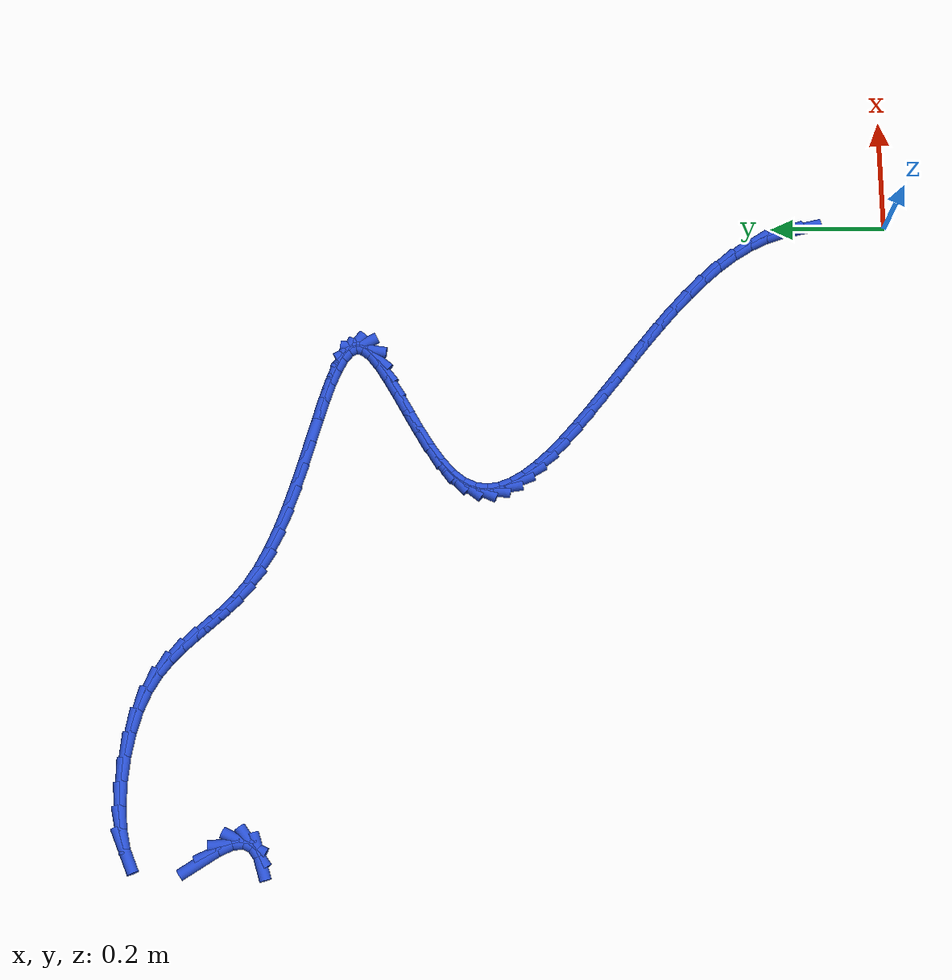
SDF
<sdf version="1.6">
 <world name="default">
  <model name="ground_plane">
   <static>1</static>
   <link name="link">
    <collision name="collision">
     <geometry><plane><normal>0 0 1</normal><size>100 100</size></plane></geometry>
     <surface><friction><ode><mu>100</mu><mu2>50</mu2></ode></friction></surface>
    </collision>
    <visual name="visual">
     <cast_shadows>0</cast_shadows>
     <geometry><plane><normal>0 0 1</normal><size>100 100</size></plane></geometry>
     <material>
      <script><uri>file://media/materials/scripts/gazebo.material</uri><name>Gazebo/WhiteGlow</name></script>
     </material>
    </visual>
   </link>
  </model>
  <model name="line">
   <link name="link_5">
    <pose>-0.003128329510036545 0.15195940457457374 0.01 0 1.57 -1.3480455954679698</pose>
    <collision name="collision">
     <geometry><cylinder><radius>0.01</radius><length>0.08</length></cylinder></geometry>
    </collision>
    <visual name="visual">
     <material>
      <script><name>Gazebo/Blue</name><uri>file://media/materials/scripts/gazebo.material</uri></script>
     </material>
     <geometry><cylinder><radius>0.01</radius><length>0.08</length></cylinder></geometry>
    </visual>
   </link>
   <link name="link_6">
    <pose>-0.009852102370371266 0.18164369224610138 0.01 0 1.57 -1.2386932895417684</pose>
    <collision name="collision">
     <geometry><cylinder><radius>0.01</radius><length>0.08</length></cylinder></geometry>
    </collision>
    <visual name="visual">
     <material>
      <script><name>Gazebo/Blue</name><uri>file://media/materials/scripts/gazebo.material</uri></script>
     </material>
     <geometry><cylinder><radius>0.01</radius><length>0.08</length></cylinder></geometry>
    </visual>
   </link>
   <link name="link_7">
    <pose>-0.01994645989118416 0.21091319098384492 0.01 0 1.57 -1.1180624288054297</pose>
    <collision name="collision">
     <geometry><cylinder><radius>0.01</radius><length>0.08</length></cylinder></geometry>
    </collision>
    <visual name="visual">
     <material>
      <script><name>Gazebo/Blue</name><uri>file://media/materials/scripts/gazebo.material</uri></script>
     </material>
     <geometry><cylinder><radius>0.01</radius><length>0.08</length></cylinder></geometry>
    </visual>
   </link>
   <link name="link_8">
    <pose>-0.0339465029595011 0.23969431836833222 0.01 0 1.57 -1.0071411976336728</pose>
    <collision name="collision">
     <geometry><cylinder><radius>0.01</radius><length>0.08</length></cylinder></geometry>
    </collision>
    <visual name="visual">
     <material>
      <script><name>Gazebo/Blue</name><uri>file://media/materials/scripts/gazebo.material</uri></script>
     </material>
     <geometry><cylinder><radius>0.01</radius><length>0.08</length></cylinder></geometry>
    </visual>
   </link>
   <link name="link_9">
    <pose>-0.05181196645920728 0.26796008248753433 0.01 0 1.57 -0.9175272400275986</pose>
    <collision name="collision">
     <geometry><cylinder><radius>0.01</radius><length>0.08</length></cylinder></geometry>
    </collision>
    <visual name="visual">
     <material>
      <script><name>Gazebo/Blue</name><uri>file://media/materials/scripts/gazebo.material</uri></script>
     </material>
     <geometry><cylinder><radius>0.01</radius><length>0.08</length></cylinder></geometry>
    </visual>
   </link>
   <link name="link_10">
    <pose>-0.07305832109058072 0.2957194659111271 0.01 0 1.57 -0.8462580177132405</pose>
    <collision name="collision">
     <geometry><cylinder><radius>0.01</radius><length>0.08</length></cylinder></geometry>
    </collision>
    <visual name="visual">
     <material>
      <script><name>Gazebo/Blue</name><uri>file://media/materials/scripts/gazebo.material</uri></script>
     </material>
     <geometry><cylinder><radius>0.01</radius><length>0.08</length></cylinder></geometry>
    </visual>
   </link>
   <link name="link_11">
    <pose>-0.09718953150126901 0.32298238291630377 0.01 0 1.57 -0.7902077203371549</pose>
    <collision name="collision">
     <geometry><cylinder><radius>0.01</radius><length>0.08</length></cylinder></geometry>
    </collision>
    <visual name="visual">
     <material>
      <script><name>Gazebo/Blue</name><uri>file://media/materials/scripts/gazebo.material</uri></script>
     </material>
     <geometry><cylinder><radius>0.01</radius><length>0.08</length></cylinder></geometry>
    </visual>
   </link>
   <link name="link_12">
    <pose>-0.1237095623389198 0.349758747780258 0.01 0 1.57 -0.7467956951377155</pose>
    <collision name="collision">
     <geometry><cylinder><radius>0.01</radius><length>0.08</length></cylinder></geometry>
    </collision>
    <visual name="visual">
     <material>
      <script><name>Gazebo/Blue</name><uri>file://media/materials/scripts/gazebo.material</uri></script>
     </material>
     <geometry><cylinder><radius>0.01</radius><length>0.08</length></cylinder></geometry>
    </visual>
   </link>
   <link name="link_13">
    <pose>-0.15212237825118077 0.3760584747801834 0.01 0 1.57 -0.7140532744991808</pose>
    <collision name="collision">
     <geometry><cylinder><radius>0.01</radius><length>0.08</length></cylinder></geometry>
    </collision>
    <visual name="visual">
     <material>
      <script><name>Gazebo/Blue</name><uri>file://media/materials/scripts/gazebo.material</uri></script>
     </material>
     <geometry><cylinder><radius>0.01</radius><length>0.08</length></cylinder></geometry>
    </visual>
   </link>
   <link name="link_14">
    <pose>-0.18193194388569936 0.4018914781932733 0.01 0 1.57 -0.6905786795140608</pose>
    <collision name="collision">
     <geometry><cylinder><radius>0.01</radius><length>0.08</length></cylinder></geometry>
    </collision>
    <visual name="visual">
     <material>
      <script><name>Gazebo/Blue</name><uri>file://media/materials/scripts/gazebo.material</uri></script>
     </material>
     <geometry><cylinder><radius>0.01</radius><length>0.08</length></cylinder></geometry>
    </visual>
   </link>
   <link name="link_15">
    <pose>-0.21264222389012347 0.42726767229672147 0.01 0 1.57 -0.6754721019940143</pose>
    <collision name="collision">
     <geometry><cylinder><radius>0.01</radius><length>0.08</length></cylinder></geometry>
    </collision>
    <visual name="visual">
     <material>
      <script><name>Gazebo/Blue</name><uri>file://media/materials/scripts/gazebo.material</uri></script>
     </material>
     <geometry><cylinder><radius>0.01</radius><length>0.08</length></cylinder></geometry>
    </visual>
   </link>
   <link name="link_16">
    <pose>-0.2437571829121006 0.4521969713677213 0.01 0 1.57 -0.6682894268690722</pose>
    <collision name="collision">
     <geometry><cylinder><radius>0.01</radius><length>0.08</length></cylinder></geometry>
    </collision>
    <visual name="visual">
     <material>
      <script><name>Gazebo/Blue</name><uri>file://media/materials/scripts/gazebo.material</uri></script>
     </material>
     <geometry><cylinder><radius>0.01</radius><length>0.08</length></cylinder></geometry>
    </visual>
   </link>
   <link name="link_17">
    <pose>-0.2747807855992784 0.4766892896834665 0.01 0 1.57 -0.6690310822193424</pose>
    <collision name="collision">
     <geometry><cylinder><radius>0.01</radius><length>0.08</length></cylinder></geometry>
    </collision>
    <visual name="visual">
     <material>
      <script><name>Gazebo/Blue</name><uri>file://media/materials/scripts/gazebo.material</uri></script>
     </material>
     <geometry><cylinder><radius>0.01</radius><length>0.08</length></cylinder></geometry>
    </visual>
   </link>
   <link name="link_18">
    <pose>-0.3052169965993044 0.5007545415211503 0.01 0 1.57 -0.6781771857134884</pose>
    <collision name="collision">
     <geometry><cylinder><radius>0.01</radius><length>0.08</length></cylinder></geometry>
    </collision>
    <visual name="visual">
     <material>
      <script><name>Gazebo/Blue</name><uri>file://media/materials/scripts/gazebo.material</uri></script>
     </material>
     <geometry><cylinder><radius>0.01</radius><length>0.08</length></cylinder></geometry>
    </visual>
   </link>
   <link name="link_19">
    <pose>-0.33456978055982645 0.5244026411579666 0.01 0 1.57 -0.6967837894188746</pose>
    <collision name="collision">
     <geometry><cylinder><radius>0.01</radius><length>0.08</length></cylinder></geometry>
    </collision>
    <visual name="visual">
     <material>
      <script><name>Gazebo/Blue</name><uri>file://media/materials/scripts/gazebo.material</uri></script>
     </material>
     <geometry><cylinder><radius>0.01</radius><length>0.08</length></cylinder></geometry>
    </visual>
   </link>
   <link name="link_20">
    <pose>-0.36234310212849197 0.5476435028711086 0.01 0 1.57 -0.726664686968046</pose>
    <collision name="collision">
     <geometry><cylinder><radius>0.01</radius><length>0.08</length></cylinder></geometry>
    </collision>
    <visual name="visual">
     <material>
      <script><name>Gazebo/Blue</name><uri>file://media/materials/scripts/gazebo.material</uri></script>
     </material>
     <geometry><cylinder><radius>0.01</radius><length>0.08</length></cylinder></geometry>
    </visual>
   </link>
   <link name="link_21">
    <pose>-0.38804092595294865 0.5704870409377701 0.01 0 1.57 -0.7706970185485295</pose>
    <collision name="collision">
     <geometry><cylinder><radius>0.01</radius><length>0.08</length></cylinder></geometry>
    </collision>
    <visual name="visual">
     <material>
      <script><name>Gazebo/Blue</name><uri>file://media/materials/scripts/gazebo.material</uri></script>
     </material>
     <geometry><cylinder><radius>0.01</radius><length>0.08</length></cylinder></geometry>
    </visual>
   </link>
   <link name="link_22">
    <pose>-0.41116721668084416 0.5929431696351447 0.01 0 1.57 -0.8332978531784716</pose>
    <collision name="collision">
     <geometry><cylinder><radius>0.01</radius><length>0.08</length></cylinder></geometry>
    </collision>
    <visual name="visual">
     <material>
      <script><name>Gazebo/Blue</name><uri>file://media/materials/scripts/gazebo.material</uri></script>
     </material>
     <geometry><cylinder><radius>0.01</radius><length>0.08</length></cylinder></geometry>
    </visual>
   </link>
   <link name="link_23">
    <pose>-0.43122593895982597 0.6150218032404253 0.01 0 1.57 -0.9210800979003577</pose>
    <collision name="collision">
     <geometry><cylinder><radius>0.01</radius><length>0.08</length></cylinder></geometry>
    </collision>
    <visual name="visual">
     <material>
      <script><name>Gazebo/Blue</name><uri>file://media/materials/scripts/gazebo.material</uri></script>
     </material>
     <geometry><cylinder><radius>0.01</radius><length>0.08</length></cylinder></geometry>
    </visual>
   </link>
   <link name="link_24">
    <pose>-0.4477210574375421 0.6367328560308064 0.01 0 1.57 -1.0434441614694652</pose>
    <collision name="collision">
     <geometry><cylinder><radius>0.01</radius><length>0.08</length></cylinder></geometry>
    </collision>
    <visual name="visual">
     <material>
      <script><name>Gazebo/Blue</name><uri>file://media/materials/scripts/gazebo.material</uri></script>
     </material>
     <geometry><cylinder><radius>0.01</radius><length>0.08</length></cylinder></geometry>
    </visual>
   </link>
   <link name="link_25">
    <pose>-0.46015653676163987 0.6580862422834808 0.01 0 1.57 -1.2119133022652704</pose>
    <collision name="collision">
     <geometry><cylinder><radius>0.01</radius><length>0.08</length></cylinder></geometry>
    </collision>
    <visual name="visual">
     <material>
      <script><name>Gazebo/Blue</name><uri>file://media/materials/scripts/gazebo.material</uri></script>
     </material>
     <geometry><cylinder><radius>0.01</radius><length>0.08</length></cylinder></geometry>
    </visual>
   </link>
   <link name="link_26">
    <pose>-0.4680363415797669 0.6790918762756425 0.01 0 1.57 -1.4348050715899647</pose>
    <collision name="collision">
     <geometry><cylinder><radius>0.01</radius><length>0.08</length></cylinder></geometry>
    </collision>
    <visual name="visual">
     <material>
      <script><name>Gazebo/Blue</name><uri>file://media/materials/scripts/gazebo.material</uri></script>
     </material>
     <geometry><cylinder><radius>0.01</radius><length>0.08</length></cylinder></geometry>
    </visual>
   </link>
   <link name="link_27">
    <pose>-0.47086443653957105 0.6997596722844847 0.01 0 1.57 1.4378744392433662</pose>
    <collision name="collision">
     <geometry><cylinder><radius>0.01</radius><length>0.08</length></cylinder></geometry>
    </collision>
    <visual name="visual">
     <material>
      <script><name>Gazebo/Blue</name><uri>file://media/materials/scripts/gazebo.material</uri></script>
     </material>
     <geometry><cylinder><radius>0.01</radius><length>0.08</length></cylinder></geometry>
    </visual>
   </link>
   <link name="link_28">
    <pose>-0.46814478628869965 0.720099544587201 0.01 0 1.57 1.1582238367129798</pose>
    <collision name="collision">
     <geometry><cylinder><radius>0.01</radius><length>0.08</length></cylinder></geometry>
    </collision>
    <visual name="visual">
     <material>
      <script><name>Gazebo/Blue</name><uri>file://media/materials/scripts/gazebo.material</uri></script>
     </material>
     <geometry><cylinder><radius>0.01</radius><length>0.08</length></cylinder></geometry>
    </visual>
   </link>
   <link name="link_29">
    <pose>-0.4593813554748005 0.740121407460985 0.01 0 1.57 0.9107008182601583</pose>
    <collision name="collision">
     <geometry><cylinder><radius>0.01</radius><length>0.08</length></cylinder></geometry>
    </collision>
    <visual name="visual">
     <material>
      <script><name>Gazebo/Blue</name><uri>file://media/materials/scripts/gazebo.material</uri></script>
     </material>
     <geometry><cylinder><radius>0.01</radius><length>0.08</length></cylinder></geometry>
    </visual>
   </link>
   <link name="link_30">
    <pose>-0.44407839573635316 0.7598351630717289 0.01 0 1.57 0.7261743571495091</pose>
    <collision name="collision">
     <geometry><cylinder><radius>0.01</radius><length>0.08</length></cylinder></geometry>
    </collision>
    <visual name="visual">
     <material>
      <script><name>Gazebo/Blue</name><uri>file://media/materials/scripts/gazebo.material</uri></script>
     </material>
     <geometry><cylinder><radius>0.01</radius><length>0.08</length></cylinder></geometry>
    </visual>
   </link>
   <link name="link_31">
    <pose>-0.4222390106282682 0.779229661533089 0.01 0 1.57 0.6158409909039841</pose>
    <collision name="collision">
     <geometry><cylinder><radius>0.01</radius><length>0.08</length></cylinder></geometry>
    </collision>
    <visual name="visual">
     <material>
      <script><name>Gazebo/Blue</name><uri>file://media/materials/scripts/gazebo.material</uri></script>
     </material>
     <geometry><cylinder><radius>0.01</radius><length>0.08</length></cylinder></geometry>
    </visual>
   </link>
   <link name="link_32">
    <pose>-0.39538982176992105 0.7982294589652185 0.01 0 1.57 0.5523717494121562</pose>
    <collision name="collision">
     <geometry><cylinder><radius>0.01</radius><length>0.08</length></cylinder></geometry>
    </collision>
    <visual name="visual">
     <material>
      <script><name>Gazebo/Blue</name><uri>file://media/materials/scripts/gazebo.material</uri></script>
     </material>
     <geometry><cylinder><radius>0.01</radius><length>0.08</length></cylinder></geometry>
    </visual>
   </link>
   <link name="link_33">
    <pose>-0.3653472763014694 0.8167468805600087 0.01 0 1.57 0.5189876670722925</pose>
    <collision name="collision">
     <geometry><cylinder><radius>0.01</radius><length>0.08</length></cylinder></geometry>
    </collision>
    <visual name="visual">
     <material>
      <script><name>Gazebo/Blue</name><uri>file://media/materials/scripts/gazebo.material</uri></script>
     </material>
     <geometry><cylinder><radius>0.01</radius><length>0.08</length></cylinder></geometry>
    </visual>
   </link>
   <link name="link_34">
    <pose>-0.33392782136307136 0.8346942515093518 0.01 0 1.57 0.5090346806755731</pose>
    <collision name="collision">
     <geometry><cylinder><radius>0.01</radius><length>0.08</length></cylinder></geometry>
    </collision>
    <visual name="visual">
     <material>
      <script><name>Gazebo/Blue</name><uri>file://media/materials/scripts/gazebo.material</uri></script>
     </material>
     <geometry><cylinder><radius>0.01</radius><length>0.08</length></cylinder></geometry>
    </visual>
   </link>
   <link name="link_35">
    <pose>-0.30294790409488453 0.8519838970051395 0.01 0 1.57 0.522566140537982</pose>
    <collision name="collision">
     <geometry><cylinder><radius>0.01</radius><length>0.08</length></cylinder></geometry>
    </collision>
    <visual name="visual">
     <material>
      <script><name>Gazebo/Blue</name><uri>file://media/materials/scripts/gazebo.material</uri></script>
     </material>
     <geometry><cylinder><radius>0.01</radius><length>0.08</length></cylinder></geometry>
    </visual>
   </link>
   <link name="link_36">
    <pose>-0.274223971637067 0.8685281422392639 0.01 0 1.57 0.5674175865803455</pose>
    <collision name="collision">
     <geometry><cylinder><radius>0.01</radius><length>0.08</length></cylinder></geometry>
    </collision>
    <visual name="visual">
     <material>
      <script><name>Gazebo/Blue</name><uri>file://media/materials/scripts/gazebo.material</uri></script>
     </material>
     <geometry><cylinder><radius>0.01</radius><length>0.08</length></cylinder></geometry>
    </visual>
   </link>
   <link name="link_37">
    <pose>-0.24957247112977649 0.8842393124036169 0.01 0 1.57 0.6675609005205563</pose>
    <collision name="collision">
     <geometry><cylinder><radius>0.01</radius><length>0.08</length></cylinder></geometry>
    </collision>
    <visual name="visual">
     <material>
      <script><name>Gazebo/Blue</name><uri>file://media/materials/scripts/gazebo.material</uri></script>
     </material>
     <geometry><cylinder><radius>0.01</radius><length>0.08</length></cylinder></geometry>
    </visual>
   </link>
   <link name="link_38">
    <pose>-0.23080984971317092 0.8990297326900901 0.01 0 1.57 0.8946488542385334</pose>
    <collision name="collision">
     <geometry><cylinder><radius>0.01</radius><length>0.08</length></cylinder></geometry>
    </collision>
    <visual name="visual">
     <material>
      <script><name>Gazebo/Blue</name><uri>file://media/materials/scripts/gazebo.material</uri></script>
     </material>
     <geometry><cylinder><radius>0.01</radius><length>0.08</length></cylinder></geometry>
    </visual>
   </link>
   <link name="link_39">
    <pose>-0.2197524146927471 0.9128117428025377 0.01 0 1.57 1.4077720821595603</pose>
    <collision name="collision">
     <geometry><cylinder><radius>0.01</radius><length>0.08</length></cylinder></geometry>
    </collision>
    <visual name="visual">
     <material>
      <script><name>Gazebo/Blue</name><uri>file://media/materials/scripts/gazebo.material</uri></script>
     </material>
     <geometry><cylinder><radius>0.01</radius><length>0.08</length></cylinder></geometry>
    </visual>
   </link>
   <link name="link_40">
    <pose>-0.21765621709960623 0.9255558255258186 0.01 0 1.57 -1.0835760126418106</pose>
    <collision name="collision">
     <geometry><cylinder><radius>0.01</radius><length>0.08</length></cylinder></geometry>
    </collision>
    <visual name="visual">
     <material>
      <script><name>Gazebo/Blue</name><uri>file://media/materials/scripts/gazebo.material</uri></script>
     </material>
     <geometry><cylinder><radius>0.01</radius><length>0.08</length></cylinder></geometry>
    </visual>
   </link>
   <link name="link_41">
    <pose>-0.2239435937431828 0.9374227654752215 0.01 0 1.57 -0.6842014545667056</pose>
    <collision name="collision">
     <geometry><cylinder><radius>0.01</radius><length>0.08</length></cylinder></geometry>
    </collision>
    <visual name="visual">
     <material>
      <script><name>Gazebo/Blue</name><uri>file://media/materials/scripts/gazebo.material</uri></script>
     </material>
     <geometry><cylinder><radius>0.01</radius><length>0.08</length></cylinder></geometry>
    </visual>
   </link>
   <link name="link_42">
    <pose>-0.2376623129985314 0.9486122197674546 0.01 0 1.57 -0.4876204432883087</pose>
    <collision name="collision">
     <geometry><cylinder><radius>0.01</radius><length>0.08</length></cylinder></geometry>
    </collision>
    <visual name="visual">
     <material>
      <script><name>Gazebo/Blue</name><uri>file://media/materials/scripts/gazebo.material</uri></script>
     </material>
     <geometry><cylinder><radius>0.01</radius><length>0.08</length></cylinder></geometry>
    </visual>
   </link>
   <link name="link_43">
    <pose>-0.2578601432407067 0.959323845519227 0.01 0 1.57 -0.3853083352462518</pose>
    <collision name="collision">
     <geometry><cylinder><radius>0.01</radius><length>0.08</length></cylinder></geometry>
    </collision>
    <visual name="visual">
     <material>
      <script><name>Gazebo/Blue</name><uri>file://media/materials/scripts/gazebo.material</uri></script>
     </material>
     <geometry><cylinder><radius>0.01</radius><length>0.08</length></cylinder></geometry>
    </visual>
   </link>
   <link name="link_44">
    <pose>-0.28358485284476365 0.9697572998472477 0.01 0 1.57 -0.32931031113262454</pose>
    <collision name="collision">
     <geometry><cylinder><radius>0.01</radius><length>0.08</length></cylinder></geometry>
    </collision>
    <visual name="visual">
     <material>
      <script><name>Gazebo/Blue</name><uri>file://media/materials/scripts/gazebo.material</uri></script>
     </material>
     <geometry><cylinder><radius>0.01</radius><length>0.08</length></cylinder></geometry>
    </visual>
   </link>
   <link name="link_45">
    <pose>-0.31388421018575646 0.9801122398682247 0.01 0 1.57 -0.2995384758358758</pose>
    <collision name="collision">
     <geometry><cylinder><radius>0.01</radius><length>0.08</length></cylinder></geometry>
    </collision>
    <visual name="visual">
     <material>
      <script><name>Gazebo/Blue</name><uri>file://media/materials/scripts/gazebo.material</uri></script>
     </material>
     <geometry><cylinder><radius>0.01</radius><length>0.08</length></cylinder></geometry>
    </visual>
   </link>
   <link name="link_46">
    <pose>-0.34780598363874027 0.9905883226988667 0.01 0 1.57 -0.28692004466132665</pose>
    <collision name="collision">
     <geometry><cylinder><radius>0.01</radius><length>0.08</length></cylinder></geometry>
    </collision>
    <visual name="visual">
     <material>
      <script><name>Gazebo/Blue</name><uri>file://media/materials/scripts/gazebo.material</uri></script>
     </material>
     <geometry><cylinder><radius>0.01</radius><length>0.08</length></cylinder></geometry>
    </visual>
   </link>
   <link name="link_47">
    <pose>-0.38439794157876916 1.001385205455882 0.01 0 1.57 -0.2872455026072532</pose>
    <collision name="collision">
     <geometry><cylinder><radius>0.01</radius><length>0.08</length></cylinder></geometry>
    </collision>
    <visual name="visual">
     <material>
      <script><name>Gazebo/Blue</name><uri>file://media/materials/scripts/gazebo.material</uri></script>
     </material>
     <geometry><cylinder><radius>0.01</radius><length>0.08</length></cylinder></geometry>
    </visual>
   </link>
   <link name="link_48">
    <pose>-0.42270785238089836 1.0127025452559804 0.01 0 1.57 -0.2988304589437269</pose>
    <collision name="collision">
     <geometry><cylinder><radius>0.01</radius><length>0.08</length></cylinder></geometry>
    </collision>
    <visual name="visual">
     <material>
      <script><name>Gazebo/Blue</name><uri>file://media/materials/scripts/gazebo.material</uri></script>
     </material>
     <geometry><cylinder><radius>0.01</radius><length>0.08</length></cylinder></geometry>
    </visual>
   </link>
   <link name="link_49">
    <pose>-0.461783484420182 1.0247399992158688 0.01 0 1.57 -0.3216159661815669</pose>
    <collision name="collision">
     <geometry><cylinder><radius>0.01</radius><length>0.08</length></cylinder></geometry>
    </collision>
    <visual name="visual">
     <material>
      <script><name>Gazebo/Blue</name><uri>file://media/materials/scripts/gazebo.material</uri></script>
     </material>
     <geometry><cylinder><radius>0.01</radius><length>0.08</length></cylinder></geometry>
    </visual>
   </link>
   <link name="link_50">
    <pose>-0.5006726060716753 1.0376972244522569 0.01 0 1.57 -0.35691753837155293</pose>
    <collision name="collision">
     <geometry><cylinder><radius>0.01</radius><length>0.08</length></cylinder></geometry>
    </collision>
    <visual name="visual">
     <material>
      <script><name>Gazebo/Blue</name><uri>file://media/materials/scripts/gazebo.material</uri></script>
     </material>
     <geometry><cylinder><radius>0.01</radius><length>0.08</length></cylinder></geometry>
    </visual>
   </link>
   <link name="link_51">
    <pose>-0.5384229857104325 1.051773878081853 0.01 0 1.57 -0.407569088144858</pose>
    <collision name="collision">
     <geometry><cylinder><radius>0.01</radius><length>0.08</length></cylinder></geometry>
    </collision>
    <visual name="visual">
     <material>
      <script><name>Gazebo/Blue</name><uri>file://media/materials/scripts/gazebo.material</uri></script>
     </material>
     <geometry><cylinder><radius>0.01</radius><length>0.08</length></cylinder></geometry>
    </visual>
   </link>
   <link name="link_52">
    <pose>-0.5740823917115083 1.0671696172213658 0.01 0 1.57 -0.4784098817454756</pose>
    <collision name="collision">
     <geometry><cylinder><radius>0.01</radius><length>0.08</length></cylinder></geometry>
    </collision>
    <visual name="visual">
     <material>
      <script><name>Gazebo/Blue</name><uri>file://media/materials/scripts/gazebo.material</uri></script>
     </material>
     <geometry><cylinder><radius>0.01</radius><length>0.08</length></cylinder></geometry>
    </visual>
   </link>
   <link name="link_53">
    <pose>-0.6066985924499573 1.0840840989875034 0.01 0 1.57 -0.5765808142376876</pose>
    <collision name="collision">
     <geometry><cylinder><radius>0.01</radius><length>0.08</length></cylinder></geometry>
    </collision>
    <visual name="visual">
     <material>
      <script><name>Gazebo/Blue</name><uri>file://media/materials/scripts/gazebo.material</uri></script>
     </material>
     <geometry><cylinder><radius>0.01</radius><length>0.08</length></cylinder></geometry>
    </visual>
   </link>
   <link name="link_54">
    <pose>-0.6353402614776684 1.102709561430693 0.01 0 1.57 -0.6883399514578248</pose>
    <collision name="collision">
     <geometry><cylinder><radius>0.01</radius><length>0.08</length></cylinder></geometry>
    </collision>
    <visual name="visual">
     <material>
      <script><name>Gazebo/Blue</name><uri>file://media/materials/scripts/gazebo.material</uri></script>
     </material>
     <geometry><cylinder><radius>0.01</radius><length>0.08</length></cylinder></geometry>
    </visual>
   </link>
   <link name="link_55">
    <pose>-0.6599294588325509 1.1229353831252706 0.01 0 1.57 -0.7789204026373183</pose>
    <collision name="collision">
     <geometry><cylinder><radius>0.01</radius><length>0.08</length></cylinder></geometry>
    </collision>
    <visual name="visual">
     <material>
      <script><name>Gazebo/Blue</name><uri>file://media/materials/scripts/gazebo.material</uri></script>
     </material>
     <geometry><cylinder><radius>0.01</radius><length>0.08</length></cylinder></geometry>
    </visual>
   </link>
   <link name="link_56">
    <pose>-0.6815209600824957 1.1442489517099395 0.01 0 1.57 -0.8366711841736815</pose>
    <collision name="collision">
     <geometry><cylinder><radius>0.01</radius><length>0.08</length></cylinder></geometry>
    </collision>
    <visual name="visual">
     <material>
      <script><name>Gazebo/Blue</name><uri>file://media/materials/scripts/gazebo.material</uri></script>
     </material>
     <geometry><cylinder><radius>0.01</radius><length>0.08</length></cylinder></geometry>
    </visual>
   </link>
   <link name="link_57">
    <pose>-0.7012477197165798 1.1661099098010712 0.01 0 1.57 -0.8555912537976701</pose>
    <collision name="collision">
     <geometry><cylinder><radius>0.01</radius><length>0.08</length></cylinder></geometry>
    </collision>
    <visual name="visual">
     <material>
      <script><name>Gazebo/Blue</name><uri>file://media/materials/scripts/gazebo.material</uri></script>
     </material>
     <geometry><cylinder><radius>0.01</radius><length>0.08</length></cylinder></geometry>
    </visual>
   </link>
   <link name="link_58">
    <pose>-0.7202426922238798 1.1879779000150386 0.01 0 1.57 -0.8329558631543618</pose>
    <collision name="collision">
     <geometry><cylinder><radius>0.01</radius><length>0.08</length></cylinder></geometry>
    </collision>
    <visual name="visual">
     <material>
      <script><name>Gazebo/Blue</name><uri>file://media/materials/scripts/gazebo.material</uri></script>
     </material>
     <geometry><cylinder><radius>0.01</radius><length>0.08</length></cylinder></geometry>
    </visual>
   </link>
   <link name="link_59">
    <pose>-0.739638832093472 1.209312564968213 0.01 0 1.57 -0.769151493976583</pose>
    <collision name="collision">
     <geometry><cylinder><radius>0.01</radius><length>0.08</length></cylinder></geometry>
    </collision>
    <visual name="visual">
     <material>
      <script><name>Gazebo/Blue</name><uri>file://media/materials/scripts/gazebo.material</uri></script>
     </material>
     <geometry><cylinder><radius>0.01</radius><length>0.08</length></cylinder></geometry>
    </visual>
   </link>
   <link name="link_60">
    <pose>-0.7605690938144334 1.2295735472769675 0.01 0 1.57 -0.6687451990214621</pose>
    <collision name="collision">
     <geometry><cylinder><radius>0.01</radius><length>0.08</length></cylinder></geometry>
    </collision>
    <visual name="visual">
     <material>
      <script><name>Gazebo/Blue</name><uri>file://media/materials/scripts/gazebo.material</uri></script>
     </material>
     <geometry><cylinder><radius>0.01</radius><length>0.08</length></cylinder></geometry>
    </visual>
   </link>
   <link name="link_61">
    <pose>-0.7841664318758406 1.2482204895576747 0.01 0 1.57 -0.541870808764979</pose>
    <collision name="collision">
     <geometry><cylinder><radius>0.01</radius><length>0.08</length></cylinder></geometry>
    </collision>
    <visual name="visual">
     <material>
      <script><name>Gazebo/Blue</name><uri>file://media/materials/scripts/gazebo.material</uri></script>
     </material>
     <geometry><cylinder><radius>0.01</radius><length>0.08</length></cylinder></geometry>
    </visual>
   </link>
   <link name="link_62">
    <pose>-0.8115638007667699 1.2647130344267055 0.01 0 1.57 -0.40387303769208976</pose>
    <collision name="collision">
     <geometry><cylinder><radius>0.01</radius><length>0.08</length></cylinder></geometry>
    </collision>
    <visual name="visual">
     <material>
      <script><name>Gazebo/Blue</name><uri>file://media/materials/scripts/gazebo.material</uri></script>
     </material>
     <geometry><cylinder><radius>0.01</radius><length>0.08</length></cylinder></geometry>
    </visual>
   </link>
   <link name="link_63">
    <pose>-0.8438598119882968 1.2785152544241005 0.01 0 1.57 -0.28226828720965347</pose>
    <collision name="collision">
     <geometry><cylinder><radius>0.01</radius><length>0.08</length></cylinder></geometry>
    </collision>
    <visual name="visual">
     <material>
      <script><name>Gazebo/Blue</name><uri>file://media/materials/scripts/gazebo.material</uri></script>
     </material>
     <geometry><cylinder><radius>0.01</radius><length>0.08</length></cylinder></geometry>
    </visual>
   </link>
   <link name="link_64">
    <pose>-0.8808892889451557 1.2892542389129453 0.01 0 1.57 -0.18559314414674144</pose>
    <collision name="collision">
     <geometry><cylinder><radius>0.01</radius><length>0.08</length></cylinder></geometry>
    </collision>
    <visual name="visual">
     <material>
      <script><name>Gazebo/Blue</name><uri>file://media/materials/scripts/gazebo.material</uri></script>
     </material>
     <geometry><cylinder><radius>0.01</radius><length>0.08</length></cylinder></geometry>
    </visual>
   </link>
   <link name="link_65">
    <pose>-0.9208854440851852 1.2967636700630707 0.01 0 1.57 -0.10009182327299232</pose>
    <collision name="collision">
     <geometry><cylinder><radius>0.01</radius><length>0.08</length></cylinder></geometry>
    </collision>
    <visual name="visual">
     <material>
      <script><name>Gazebo/Blue</name><uri>file://media/materials/scripts/gazebo.material</uri></script>
     </material>
     <geometry><cylinder><radius>0.01</radius><length>0.08</length></cylinder></geometry>
    </visual>
   </link>
   <link name="link_66">
    <pose>-0.9619783914536414 1.300890528772233 0.01 0 1.57 -0.014663366430533162</pose>
    <collision name="collision">
     <geometry><cylinder><radius>0.01</radius><length>0.08</length></cylinder></geometry>
    </collision>
    <visual name="visual">
     <material>
      <script><name>Gazebo/Blue</name><uri>file://media/materials/scripts/gazebo.material</uri></script>
     </material>
     <geometry><cylinder><radius>0.01</radius><length>0.08</length></cylinder></geometry>
    </visual>
   </link>
   <link name="link_67">
    <pose>-1.002298245095778 1.3014817959381888 0.01 0 1.57 0.0820236355961028</pose>
    <collision name="collision">
     <geometry><cylinder><radius>0.01</radius><length>0.08</length></cylinder></geometry>
    </collision>
    <visual name="visual">
     <material>
      <script><name>Gazebo/Blue</name><uri>file://media/materials/scripts/gazebo.material</uri></script>
     </material>
     <geometry><cylinder><radius>0.01</radius><length>0.08</length></cylinder></geometry>
    </visual>
   </link>
   <link name="link_68">
    <pose>-1.0399751190568516 1.2983844524586954 0.01 0 1.57 0.2062565605071578</pose>
    <collision name="collision">
     <geometry><cylinder><radius>0.01</radius><length>0.08</length></cylinder></geometry>
    </collision>
    <visual name="visual">
     <material>
      <script><name>Gazebo/Blue</name><uri>file://media/materials/scripts/gazebo.material</uri></script>
     </material>
     <geometry><cylinder><radius>0.01</radius><length>0.08</length></cylinder></geometry>
    </visual>
   </link>
   <link name="link_69">
    <pose>-1.0731391273821163 1.2914454792315089 0.01 0 1.57 0.3876037213641503</pose>
    <collision name="collision">
     <geometry><cylinder><radius>0.01</radius><length>0.08</length></cylinder></geometry>
    </collision>
    <visual name="visual">
     <material>
      <script><name>Gazebo/Blue</name><uri>file://media/materials/scripts/gazebo.material</uri></script>
     </material>
     <geometry><cylinder><radius>0.01</radius><length>0.08</length></cylinder></geometry>
    </visual>
   </link>
   <link name="link_75">
    <pose>-1.0921632158349386 1.166976556549778 0.01 0 1.57 -1.0069440193012957</pose>
    <collision name="collision">
     <geometry><cylinder><radius>0.01</radius><length>0.08</length></cylinder></geometry>
    </collision>
    <visual name="visual">
     <material>
      <script><name>Gazebo/Blue</name><uri>file://media/materials/scripts/gazebo.material</uri></script>
     </material>
     <geometry><cylinder><radius>0.01</radius><length>0.08</length></cylinder></geometry>
    </visual>
   </link>
   <link name="link_76">
    <pose>-1.0750500691869016 1.139912884468215 0.01 0 1.57 -1.1403352694862905</pose>
    <collision name="collision">
     <geometry><cylinder><radius>0.01</radius><length>0.08</length></cylinder></geometry>
    </collision>
    <visual name="visual">
     <material>
      <script><name>Gazebo/Blue</name><uri>file://media/materials/scripts/gazebo.material</uri></script>
     </material>
     <geometry><cylinder><radius>0.01</radius><length>0.08</length></cylinder></geometry>
    </visual>
   </link>
   <link name="link_77">
    <pose>-1.0641695966053428 1.116217400907579 0.01 0 1.57 -1.4862586148007373</pose>
    <collision name="collision">
     <geometry><cylinder><radius>0.01</radius><length>0.08</length></cylinder></geometry>
    </collision>
    <visual name="visual">
     <material>
      <script><name>Gazebo/Blue</name><uri>file://media/materials/scripts/gazebo.material</uri></script>
     </material>
     <geometry><cylinder><radius>0.01</radius><length>0.08</length></cylinder></geometry>
    </visual>
   </link>
   <link name="link_78">
    <pose>-1.0625558745513524 1.097174112873986 0.01 0 1.57 1.118738650910807</pose>
    <collision name="collision">
     <geometry><cylinder><radius>0.01</radius><length>0.08</length></cylinder></geometry>
    </collision>
    <visual name="visual">
     <material>
      <script><name>Gazebo/Blue</name><uri>file://media/materials/scripts/gazebo.material</uri></script>
     </material>
     <geometry><cylinder><radius>0.01</radius><length>0.08</length></cylinder></geometry>
    </visual>
   </link>
   <link name="link_79">
    <pose>-1.0696234634662067 1.0826196324781274 0.01 0 1.57 0.6084987038579283</pose>
    <collision name="collision">
     <geometry><cylinder><radius>0.01</radius><length>0.08</length></cylinder></geometry>
    </collision>
    <visual name="visual">
     <material>
      <script><name>Gazebo/Blue</name><uri>file://media/materials/scripts/gazebo.material</uri></script>
     </material>
     <geometry><cylinder><radius>0.01</radius><length>0.08</length></cylinder></geometry>
    </visual>
   </link>
   <link name="link_80">
    <pose>-1.0844813188370368 1.0722683645940845 0.01 0 1.57 0.28751068351842923</pose>
    <collision name="collision">
     <geometry><cylinder><radius>0.01</radius><length>0.08</length></cylinder></geometry>
    </collision>
    <visual name="visual">
     <material>
      <script><name>Gazebo/Blue</name><uri>file://media/materials/scripts/gazebo.material</uri></script>
     </material>
     <geometry><cylinder><radius>0.01</radius><length>0.08</length></cylinder></geometry>
    </visual>
   </link>
  </model>
 </world>
</sdf>
